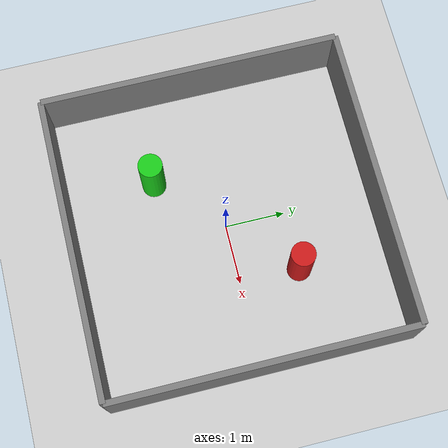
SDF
<?xml version="1.0" ?>
<sdf version="1.8">
  <world name="research_world">
    <physics name="1ms" type="ignored">
      <max_step_size>0.001</max_step_size>
      <real_time_factor>1.0</real_time_factor>
    </physics>

    <plugin filename="gz-sim-physics-system" name="gz::sim::systems::Physics"/>
    <plugin filename="gz-sim-sensors-system" name="gz::sim::systems::Sensors">
      <render_engine>ogre2</render_engine>
    </plugin>
    <plugin filename="gz-sim-imu-system" name="gz::sim::systems::Imu"/>
    <plugin filename="gz-sim-user-commands-system" name="gz::sim::systems::UserCommands"/>
    <plugin filename="gz-sim-scene-broadcaster-system" name="gz::sim::systems::SceneBroadcaster"/>

    <light type="directional" name="sun">
      <cast_shadows>true</cast_shadows>
      <pose>0 0 10 0 0 0</pose>
      <diffuse>0.8 0.8 0.8 1</diffuse>
      <specular>0.2 0.2 0.2 1</specular>
      <attenuation>
        <range>1000</range>
        <constant>0.9</constant>
        <linear>0.01</linear>
        <quadratic>0.001</quadratic>
      </attenuation>
      <direction>-0.5 0.1 -0.9</direction>
    </light>

    <model name="ground_plane">
      <static>true</static>
      <link name="link">
        <collision name="collision">
          <geometry>
            <plane>
              <normal>0 0 1</normal>
              <size>100 100</size>
            </plane>
          </geometry>
        </collision>
        <visual name="visual">
          <geometry>
            <plane>
              <normal>0 0 1</normal>
              <size>100 100</size>
            </plane>
          </geometry>
          <material>
            <ambient>0.8 0.8 0.8 1</ambient>
            <diffuse>0.8 0.8 0.8 1</diffuse>
            <specular>0.8 0.8 0.8 1</specular>
          </material>
        </visual>
      </link>
    </model>

    <model name="arena_walls">
      <static>true</static>
      <pose>0 0 0.5 0 0 0</pose>

      <link name="north_wall">
        <pose>2.5 0 0 0 0 0</pose>
        <collision name="col"><geometry><box><size>0.1 5.0 1.0</size></box></geometry></collision>
        <visual name="vis"><geometry><box><size>0.1 5.0 1.0</size></box></geometry>
          <material><ambient>0.5 0.5 0.5 1</ambient><diffuse>0.5 0.5 0.5 1</diffuse></material>
        </visual>
      </link>

      <link name="south_wall">
        <pose>-2.5 0 0 0 0 0</pose>
        <collision name="col"><geometry><box><size>0.1 5.0 1.0</size></box></geometry></collision>
        <visual name="vis"><geometry><box><size>0.1 5.0 1.0</size></box></geometry>
          <material><ambient>0.5 0.5 0.5 1</ambient><diffuse>0.5 0.5 0.5 1</diffuse></material>
        </visual>
      </link>

      <link name="east_wall">
        <pose>0 2.5 0 0 0 0</pose>
        <collision name="col"><geometry><box><size>5.0 0.1 1.0</size></box></geometry></collision>
        <visual name="vis"><geometry><box><size>5.0 0.1 1.0</size></box></geometry>
          <material><ambient>0.5 0.5 0.5 1</ambient><diffuse>0.5 0.5 0.5 1</diffuse></material>
        </visual>
      </link>

      <link name="west_wall">
        <pose>0 -2.5 0 0 0 0</pose>
        <collision name="col"><geometry><box><size>5.0 0.1 1.0</size></box></geometry></collision>
        <visual name="vis"><geometry><box><size>5.0 0.1 1.0</size></box></geometry>
          <material><ambient>0.5 0.5 0.5 1</ambient><diffuse>0.5 0.5 0.5 1</diffuse></material>
        </visual>
      </link>
    </model>

    <model name="pillar_1">
      <static>true</static>
      <pose>1.0 1.0 0.5 0 0 0</pose>
      <link name="link">
        <collision name="col"><geometry><cylinder><radius>0.2</radius><length>1.0</length></cylinder></geometry></collision>
        <visual name="vis"><geometry><cylinder><radius>0.2</radius><length>1.0</length></cylinder></geometry>
          <material><ambient>0.8 0.1 0.1 1</ambient><diffuse>0.8 0.1 0.1 1</diffuse></material>
        </visual>
      </link>
    </model>

    <model name="pillar_2">
      <static>true</static>
      <pose>-1.0 -1.0 0.5 0 0 0</pose>
      <link name="link">
        <collision name="col"><geometry><cylinder><radius>0.2</radius><length>1.0</length></cylinder></geometry></collision>
        <visual name="vis"><geometry><cylinder><radius>0.2</radius><length>1.0</length></cylinder></geometry>
          <material><ambient>0.1 0.8 0.1 1</ambient><diffuse>0.1 0.8 0.1 1</diffuse></material>
        </visual>
      </link>
    </model>

  </world>
</sdf>
